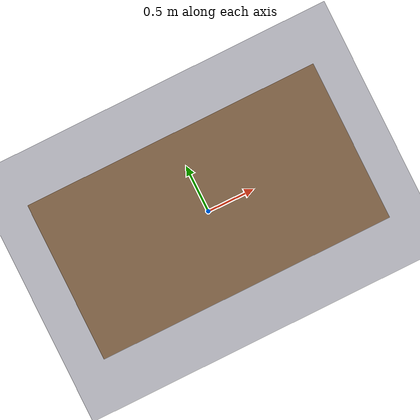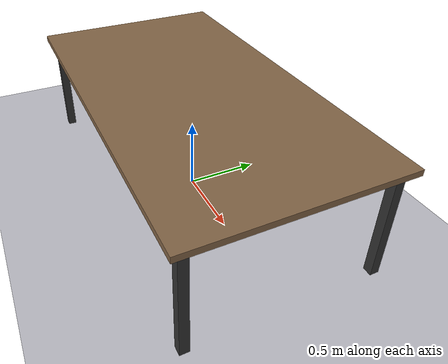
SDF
<?xml version="1.0"?>
<sdf version="1.10">
  <world name="assembly_world">
    <gravity>0 0 -9.81</gravity>
    <magnetic_field>6e-6 2.3e-5 -4.2e-5</magnetic_field>

    <physics name="physics" type="ignored">
      <max_step_size>0.001</max_step_size>
      <real_time_factor>1.0</real_time_factor>
      <real_time_update_rate>1000</real_time_update_rate>
    </physics>

    <plugin filename="gz-sim-physics-system" name="gz::sim::systems::Physics"/>
    <plugin filename="gz-sim-user-commands-system" name="gz::sim::systems::UserCommands"/>
    <plugin filename="gz-sim-scene-broadcaster-system" name="gz::sim::systems::SceneBroadcaster"/>
    <plugin filename="gz-sim-contact-system" name="gz::sim::systems::Contact"/>
    <plugin filename="gz-sim-forcetorque-system" name="gz::sim::systems::ForceTorque"/>
    <plugin filename="gz-sim-sensors-system" name="gz::sim::systems::Sensors">
      <render_engine>ogre2</render_engine>
    </plugin>

    <light type="directional" name="sun">
      <cast_shadows>true</cast_shadows>
      <pose>0 0 10 0 0 0</pose>
      <diffuse>0.95 0.95 0.95 1.0</diffuse>
      <specular>0.25 0.25 0.25 1.0</specular>
      <attenuation>
        <range>1000</range>
        <constant>0.9</constant>
        <linear>0.01</linear>
        <quadratic>0.001</quadratic>
      </attenuation>
      <direction>-0.45 0.15 -0.88</direction>
    </light>

    <model name="ground_plane">
      <static>true</static>
      <link name="ground_link">
        <collision name="collision">
          <geometry>
            <plane>
              <normal>0 0 1</normal>
              <size>20 20</size>
            </plane>
          </geometry>
          <surface>
            <friction>
              <ode>
                <mu>1.0</mu>
                <mu2>1.0</mu2>
              </ode>
            </friction>
          </surface>
        </collision>
        <visual name="visual">
          <geometry>
            <plane>
              <normal>0 0 1</normal>
              <size>20 20</size>
            </plane>
          </geometry>
          <material>
            <ambient>0.75 0.75 0.78 1</ambient>
            <diffuse>0.75 0.75 0.78 1</diffuse>
            <specular>0.1 0.1 0.1 1</specular>
          </material>
        </visual>
      </link>
    </model>

    <model name="workbench">
      <static>true</static>
      <pose>0 0 0 0 0 0</pose>
      <link name="bench_top">
        <pose>0 0 0.77 0 0 0</pose>
        <collision name="collision">
          <geometry>
            <box>
              <size>2.6 1.4 0.04</size>
            </box>
          </geometry>
        </collision>
        <visual name="visual">
          <geometry>
            <box>
              <size>2.6 1.4 0.04</size>
            </box>
          </geometry>
          <material>
            <ambient>0.52 0.40 0.28 1</ambient>
            <diffuse>0.52 0.40 0.28 1</diffuse>
            <specular>0.05 0.05 0.05 1</specular>
          </material>
        </visual>
      </link>

      <link name="leg_fl">
        <pose>1.22 0.62 0.385 0 0 0</pose>
        <collision name="collision">
          <geometry>
            <box>
              <size>0.06 0.06 0.77</size>
            </box>
          </geometry>
        </collision>
        <visual name="visual">
          <geometry>
            <box>
              <size>0.06 0.06 0.77</size>
            </box>
          </geometry>
          <material>
            <ambient>0.20 0.20 0.20 1</ambient>
            <diffuse>0.20 0.20 0.20 1</diffuse>
            <specular>0.03 0.03 0.03 1</specular>
          </material>
        </visual>
      </link>

      <link name="leg_fr">
        <pose>1.22 -0.62 0.385 0 0 0</pose>
        <collision name="collision">
          <geometry>
            <box>
              <size>0.06 0.06 0.77</size>
            </box>
          </geometry>
        </collision>
        <visual name="visual">
          <geometry>
            <box>
              <size>0.06 0.06 0.77</size>
            </box>
          </geometry>
          <material>
            <ambient>0.20 0.20 0.20 1</ambient>
            <diffuse>0.20 0.20 0.20 1</diffuse>
            <specular>0.03 0.03 0.03 1</specular>
          </material>
        </visual>
      </link>

      <link name="leg_rl">
        <pose>-1.22 0.62 0.385 0 0 0</pose>
        <collision name="collision">
          <geometry>
            <box>
              <size>0.06 0.06 0.77</size>
            </box>
          </geometry>
        </collision>
        <visual name="visual">
          <geometry>
            <box>
              <size>0.06 0.06 0.77</size>
            </box>
          </geometry>
          <material>
            <ambient>0.20 0.20 0.20 1</ambient>
            <diffuse>0.20 0.20 0.20 1</diffuse>
            <specular>0.03 0.03 0.03 1</specular>
          </material>
        </visual>
      </link>

      <link name="leg_rr">
        <pose>-1.22 -0.62 0.385 0 0 0</pose>
        <collision name="collision">
          <geometry>
            <box>
              <size>0.06 0.06 0.77</size>
            </box>
          </geometry>
        </collision>
        <visual name="visual">
          <geometry>
            <box>
              <size>0.06 0.06 0.77</size>
            </box>
          </geometry>
          <material>
            <ambient>0.20 0.20 0.20 1</ambient>
            <diffuse>0.20 0.20 0.20 1</diffuse>
            <specular>0.03 0.03 0.03 1</specular>
          </material>
        </visual>
      </link>
    </model>
  </world>
</sdf>
